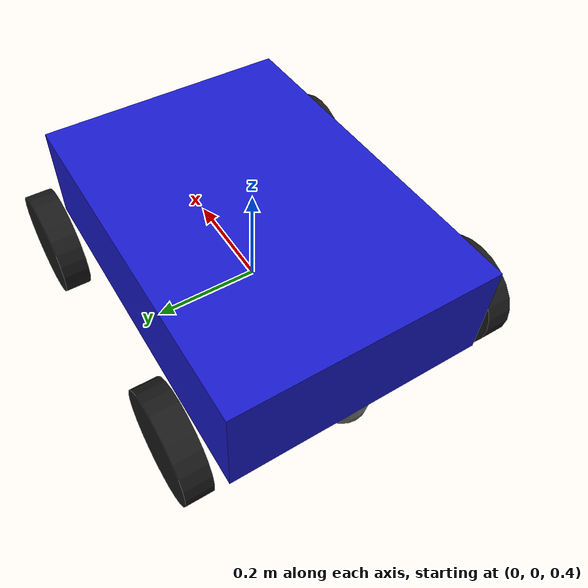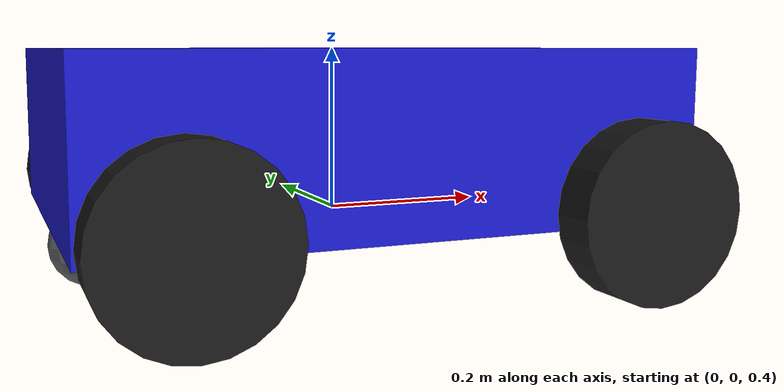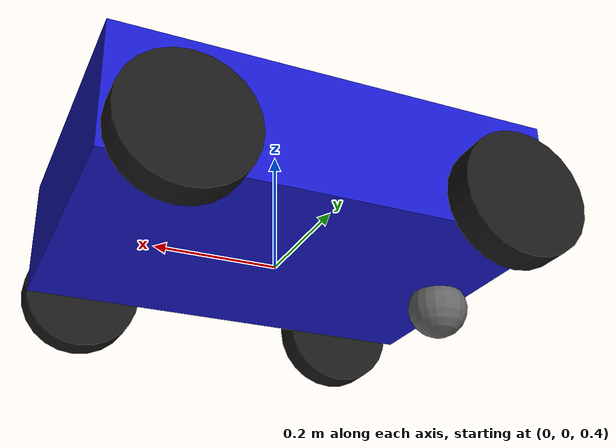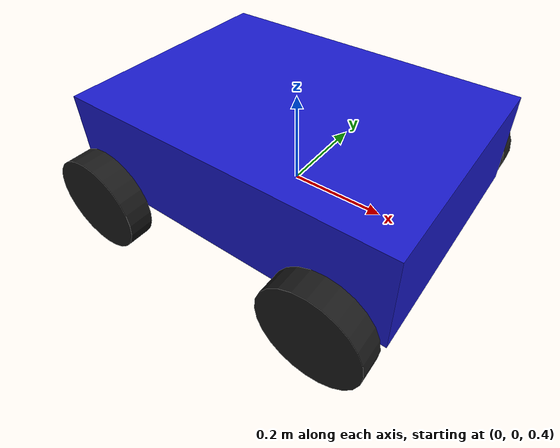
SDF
<?xml version="1.0" ?>
<sdf version="1.7">
  <model name="diff_drive_robot">
    <pose>0 0 0.325 0 0 0</pose>

    <!-- Main Chassis -->
    <link name="chassis">
      <pose>0 0 0.175 0 0 0</pose>
      <inertial>
        <mass>15.0</mass>
        <inertia>
          <ixx>0.4</ixx>
          <ixy>0</ixy>
          <ixz>0</ixz>
          <iyy>1.0</iyy>
          <iyz>0</iyz>
          <izz>1.2</izz>
        </inertia>
      </inertial>

      <!-- Chassis Body -->
      <collision name="collision">
        <geometry>
          <box>
            <size>0.7 0.5 0.2</size>
          </box>
        </geometry>
        <surface>
          <contact>
            <ode>
              <min_depth>0.001</min_depth>
              <max_vel>0</max_vel>
            </ode>
          </contact>
        </surface>
      </collision>

      <visual name="visual">
        <geometry>
          <box>
            <size>0.7 0.5 0.2</size>
          </box>
        </geometry>
        <material>
          <ambient>0.1 0.1 0.8 1</ambient>
          <diffuse>0.1 0.1 0.8 1</diffuse>
          <specular>0.1 0.1 0.1 1</specular>
        </material>
      </visual>

      <!-- IMU Sensor -->
      <sensor name="imu_sensor" type="imu">
        <always_on>true</always_on>
        <pose>0 0 0 0 0 0</pose>
        <topic>imu</topic>
        <update_rate>100</update_rate>
        <visualize>true</visualize>
        <enable_metrics>true</enable_metrics>
        <imu>
          <orientation_reference_frame>
            <localization>ENU</localization>
          </orientation_reference_frame>
          <linear_acceleration>
            <x_noise><stddev>0.001</stddev></x_noise>
            <y_noise><stddev>0.001</stddev></y_noise>
            <z_noise><stddev>0.001</stddev></z_noise>
          </linear_acceleration>
          <angular_velocity>
            <x_noise><stddev>0.0001</stddev></x_noise>
            <y_noise><stddev>0.0001</stddev></y_noise>
            <z_noise><stddev>0.0001</stddev></z_noise>
          </angular_velocity>
        </imu>
      </sensor>

      <!-- Magnetometer Sensor -->
      <sensor name="magnetometer" type="magnetometer">
        <always_on>true</always_on>
        <pose>0 0 0 0 0 0</pose>
        <topic>magnetometer</topic>
        <update_rate>50</update_rate>
        <visualize>true</visualize>
        <magnetometer>
          <x>
            <noise type="gaussian">
              <mean>0.0</mean>
              <stddev>0.001</stddev>
            </noise>
          </x>
          <y>
            <noise type="gaussian">
              <mean>0.0</mean>
              <stddev>0.001</stddev>
            </noise>
          </y>
          <z>
            <noise type="gaussian">
              <mean>0.0</mean>
              <stddev>0.001</stddev>
            </noise>
          </z>
        </magnetometer>
      </sensor>

      <!-- Camera -->
      <sensor name="camera" type="camera">
        <pose>0.35 0 0.15 0 0 0</pose>
        <topic>camera</topic>
        <camera>
          <horizontal_fov>1.047</horizontal_fov>
          <image>
            <width>640</width>
            <height>480</height>
            <format>R8G8B8</format>
          </image>
          <clip>
            <near>0.1</near>
            <far>100</far>
          </clip>
          <noise>
            <type>gaussian</type>
            <mean>0.0</mean>
            <stddev>0.007</stddev>
          </noise>
        </camera>
        <always_on>1</always_on>
        <update_rate>30</update_rate>
        <visualize>true</visualize>
      </sensor>

      <!-- 2D LiDAR -->
      <sensor name="lidar" type="gpu_lidar">
        <pose>0 0 0.2 0 0 0</pose>
        <topic>lidar</topic>
        <update_rate>10</update_rate>
        <lidar>
          <scan>
            <horizontal>
              <samples>360</samples>
              <resolution>1</resolution>
              <min_angle>-3.14159</min_angle>
              <max_angle>3.14159</max_angle>
            </horizontal>
            <vertical>
              <samples>1</samples>
              <min_angle>0</min_angle>
              <max_angle>0</max_angle>
            </vertical>
          </scan>
          <range>
            <min>0.15</min>
            <max>12.0</max>
            <resolution>0.01</resolution>
          </range>
          <noise>
            <type>gaussian</type>
            <mean>0.0</mean>
            <stddev>0.01</stddev>
          </noise>
        </lidar>
        <visualize>true</visualize>
        <always_on>true</always_on>
      </sensor>
    </link>

    <!-- Front Left Wheel -->
    <link name="front_left_wheel">
      <pose>0.25 0.3 0.1 -1.5707 0 0</pose>
      <inertial>
        <mass>1.5</mass>
        <inertia>
          <ixx>0.0045</ixx>
          <ixy>0</ixy>
          <ixz>0</ixz>
          <iyy>0.0045</iyy>
          <iyz>0</iyz>
          <izz>0.0075</izz>
        </inertia>
      </inertial>
      <collision name="collision">
        <geometry>
          <cylinder>
            <radius>0.1</radius>
            <length>0.05</length>
          </cylinder>
        </geometry>
        <surface>
          <friction>
            <ode>
              <mu>1.0</mu>
              <mu2>1.0</mu2>
              <slip1>0.0</slip1>
              <slip2>0.0</slip2>
            </ode>
          </friction>
        </surface>
      </collision>
      <visual name="visual">
        <geometry>
          <cylinder>
            <radius>0.1</radius>
            <length>0.05</length>
          </cylinder>
        </geometry>
        <material>
          <ambient>0.1 0.1 0.1 1</ambient>
          <diffuse>0.1 0.1 0.1 1</diffuse>
          <specular>0.1 0.1 0.1 1</specular>
        </material>
      </visual>
    </link>

    <!-- Front Right Wheel -->
    <link name="front_right_wheel">
      <pose>0.25 -0.3 0.1 -1.5707 0 0</pose>
      <inertial>
        <mass>1.5</mass>
        <inertia>
          <ixx>0.0045</ixx>
          <ixy>0</ixy>
          <ixz>0</ixz>
          <iyy>0.0045</iyy>
          <iyz>0</iyz>
          <izz>0.0075</izz>
        </inertia>
      </inertial>
      <collision name="collision">
        <geometry>
          <cylinder>
            <radius>0.1</radius>
            <length>0.05</length>
          </cylinder>
        </geometry>
        <surface>
          <friction>
            <ode>
              <mu>1.0</mu>
              <mu2>1.0</mu2>
              <slip1>0.0</slip1>
              <slip2>0.0</slip2>
            </ode>
          </friction>
        </surface>
      </collision>
      <visual name="visual">
        <geometry>
          <cylinder>
            <radius>0.1</radius>
            <length>0.05</length>
          </cylinder>
        </geometry>
        <material>
          <ambient>0.1 0.1 0.1 1</ambient>
          <diffuse>0.1 0.1 0.1 1</diffuse>
          <specular>0.1 0.1 0.1 1</specular>
        </material>
      </visual>
    </link>

    <!-- Rear Left Wheel -->
    <link name="rear_left_wheel">
      <pose>-0.25 0.3 0.1 -1.5707 0 0</pose>
      <inertial>
        <mass>1.5</mass>
        <inertia>
          <ixx>0.0045</ixx>
          <ixy>0</ixy>
          <ixz>0</ixz>
          <iyy>0.0045</iyy>
          <iyz>0</iyz>
          <izz>0.0075</izz>
        </inertia>
      </inertial>
      <collision name="collision">
        <geometry>
          <cylinder>
            <radius>0.1</radius>
            <length>0.05</length>
          </cylinder>
        </geometry>
        <surface>
          <friction>
            <ode>
              <mu>1.0</mu>
              <mu2>1.0</mu2>
              <slip1>0.0</slip1>
              <slip2>0.0</slip2>
            </ode>
          </friction>
        </surface>
      </collision>
      <visual name="visual">
        <geometry>
          <cylinder>
            <radius>0.1</radius>
            <length>0.05</length>
          </cylinder>
        </geometry>
        <material>
          <ambient>0.1 0.1 0.1 1</ambient>
          <diffuse>0.1 0.1 0.1 1</diffuse>
          <specular>0.1 0.1 0.1 1</specular>
        </material>
      </visual>
    </link>

    <!-- Rear Right Wheel -->
    <link name="rear_right_wheel">
      <pose>-0.25 -0.3 0.1 -1.5707 0 0</pose>
      <inertial>
        <mass>1.5</mass>
        <inertia>
          <ixx>0.0045</ixx>
          <ixy>0</ixy>
          <ixz>0</ixz>
          <iyy>0.0045</iyy>
          <iyz>0</iyz>
          <izz>0.0075</izz>
        </inertia>
      </inertial>
      <collision name="collision">
        <geometry>
          <cylinder>
            <radius>0.1</radius>
            <length>0.05</length>
          </cylinder>
        </geometry>
        <surface>
          <friction>
            <ode>
              <mu>1.0</mu>
              <mu2>1.0</mu2>
              <slip1>0.0</slip1>
              <slip2>0.0</slip2>
            </ode>
          </friction>
        </surface>
      </collision>
      <visual name="visual">
        <geometry>
          <cylinder>
            <radius>0.1</radius>
            <length>0.05</length>
          </cylinder>
        </geometry>
        <material>
          <ambient>0.1 0.1 0.1 1</ambient>
          <diffuse>0.1 0.1 0.1 1</diffuse>
          <specular>0.1 0.1 0.1 1</specular>
        </material>
      </visual>
    </link>

    <!-- Caster Wheel for Stability -->
    <link name="caster">
      <pose>-0.3 0 0.05 0 0 0</pose>
      <inertial>
        <mass>0.5</mass>
        <inertia>
          <ixx>0.0001</ixx>
          <ixy>0</ixy>
          <ixz>0</ixz>
          <iyy>0.0001</iyy>
          <iyz>0</iyz>
          <izz>0.0001</izz>
        </inertia>
      </inertial>
      <collision name="collision">
        <geometry>
          <sphere>
            <radius>0.05</radius>
          </sphere>
        </geometry>
        <surface>
          <friction>
            <ode>
              <mu>0.1</mu>
              <mu2>0.1</mu2>
              <slip1>1.0</slip1>
              <slip2>1.0</slip2>
            </ode>
          </friction>
        </surface>
      </collision>
      <visual name="visual">
        <geometry>
          <sphere>
            <radius>0.05</radius>
          </sphere>
        </geometry>
        <material>
          <ambient>0.4 0.4 0.4 1</ambient>
          <diffuse>0.4 0.4 0.4 1</diffuse>
          <specular>0.1 0.1 0.1 1</specular>
        </material>
      </visual>
    </link>

    <!-- Joints -->
    <joint name="front_left_wheel_joint" type="revolute">
      <parent>chassis</parent>
      <child>front_left_wheel</child>
      <axis>
        <xyz>0 0 1</xyz>
        <limit>
          <lower>-1.79769e+308</lower>
          <upper>1.79769e+308</upper>
        </limit>
      </axis>
    </joint>

    <joint name="front_right_wheel_joint" type="revolute">
      <parent>chassis</parent>
      <child>front_right_wheel</child>
      <axis>
        <xyz>0 0 1</xyz>
        <limit>
          <lower>-1.79769e+308</lower>
          <upper>1.79769e+308</upper>
        </limit>
      </axis>
    </joint>

    <joint name="rear_left_wheel_joint" type="revolute">
      <parent>chassis</parent>
      <child>rear_left_wheel</child>
      <axis>
        <xyz>0 0 1</xyz>
        <limit>
          <lower>-1.79769e+308</lower>
          <upper>1.79769e+308</upper>
        </limit>
      </axis>
    </joint>

    <joint name="rear_right_wheel_joint" type="revolute">
      <parent>chassis</parent>
      <child>rear_right_wheel</child>
      <axis>
        <xyz>0 0 1</xyz>
        <limit>
          <lower>-1.79769e+308</lower>
          <upper>1.79769e+308</upper>
        </limit>
      </axis>
    </joint>

    <joint name="caster_joint" type="ball">
      <parent>chassis</parent>
      <child>caster</child>
    </joint>

    <!-- Differential Drive Plugin -->
    <plugin filename="gz-sim-diff-drive-system" name="gz::sim::systems::DiffDrive">
      <left_joint>front_left_wheel_joint</left_joint>
      <left_joint>rear_left_wheel_joint</left_joint>
      <right_joint>front_right_wheel_joint</right_joint>
      <right_joint>rear_right_wheel_joint</right_joint>
      <wheel_separation>0.6</wheel_separation>
      <wheel_radius>0.1</wheel_radius>
      <odom_publish_frequency>50</odom_publish_frequency>
      <topic>/rover/cmd_vel</topic>
      <odom_topic>/rover/odometry</odom_topic>
      <tf_topic>/tf</tf_topic>
      <frame_id>odom</frame_id>
      <child_frame_id>chassis</child_frame_id>
      <min_linear_velocity>-1.0</min_linear_velocity>
      <max_linear_velocity>1.0</max_linear_velocity>
      <min_angular_velocity>-2.0</min_angular_velocity>
      <max_angular_velocity>2.0</max_angular_velocity>
      <publish_odom_tf>true</publish_odom_tf>
    </plugin>
  </model>
</sdf>
